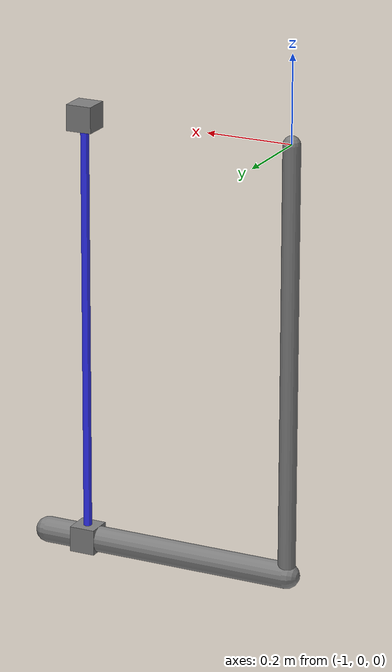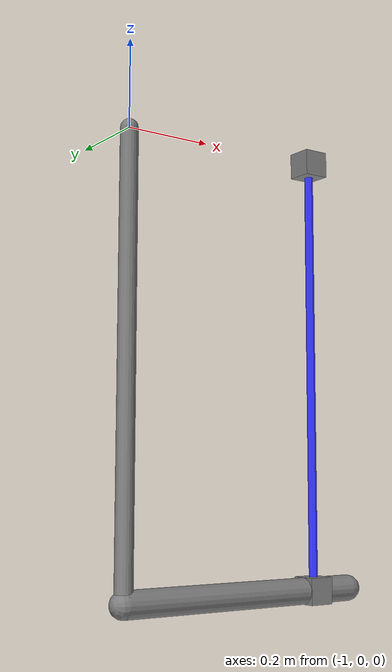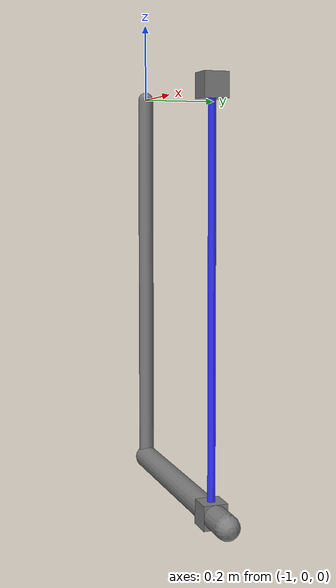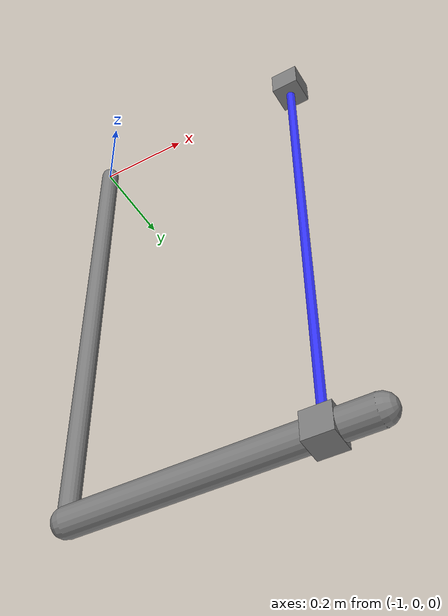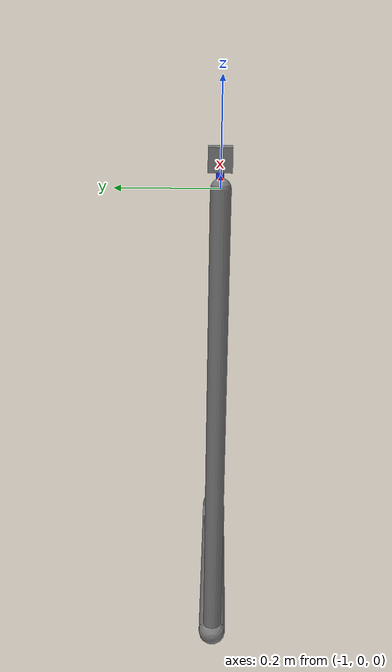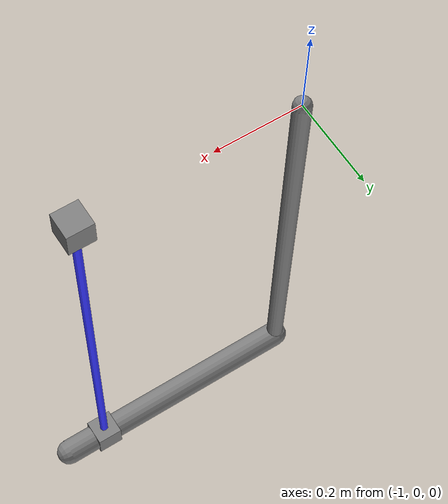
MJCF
<mujoco>
  <option integrator="RK4" timestep="1e-4">
    <flag contact="disable" gravity="disable" energy="enable"/>
  </option>

  <worldbody>
    <site name="tendon" type="box" size=".03 .03 .03" pos="-.5 0 0"/>
    <body name="link1" pos="-1 0 0">
      <joint name="link1" axis="0 -1 0" damping="0" stiffness="50"/>
      <geom name="link1" type="capsule" size=".02" fromto="0 0 0 0 0 -1"/>
      <body name="link2" pos="0 0 -1">
        <joint name="link2" axis="0 -1 0" damping="0" stiffness="1" springref="-180"/>
        <geom name="link2" type="capsule" size=".03" fromto="0 0 0 .6 0 0"/>
        <site name="link2" type="box" size=".03 .03 .03" pos=".5 0 0"/>
      </body>
    </body>
  </worldbody>

  <tendon>
    <spatial width=".01" rgba=".2 .2 1 1" armature="9">
      <site site="link2"/>
      <site site="tendon"/>
    </spatial>
  </tendon>

  <keyframe>
    <key qpos="-1 0" qvel="1 1"/>
  </keyframe>
</mujoco>
